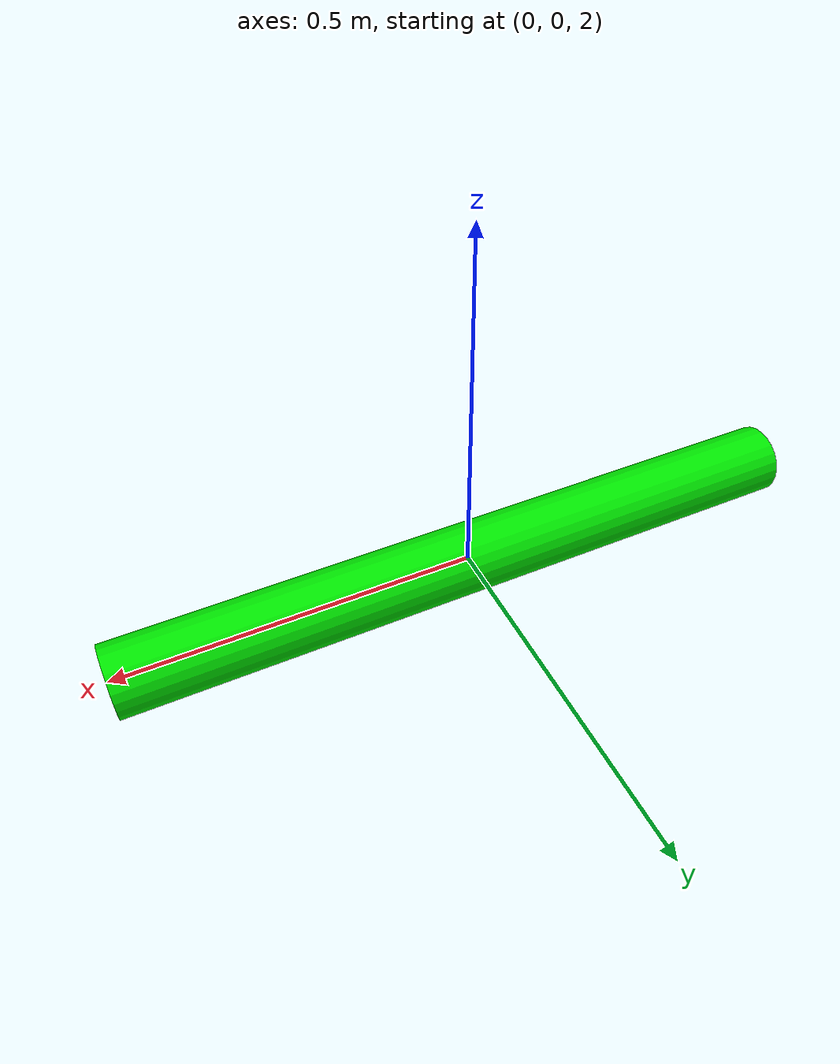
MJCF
<mujoco>
	<option gravity="0 0 -9.81">
		<flag sensornoise="enable" />
	</option>
	<worldbody>
        <light diffuse=".5 .5 .5" pos="0 0 3" dir="0 0 -1"/>
		<geom type="plane" size="100 100 0.1" rgba=".9 0 0 1"/>
		<body pos="0 0 2" euler="0 270 0">
			<joint name="pin" type="hinge" axis = "0 -1 0" pos="0 0 0.5"/>
			<geom type="cylinder" size="0.05 0.5" rgba="0 .9 0 1" mass="1"/>
		</body>
	</worldbody>
	<actuator>
		<motor joint="pin" name="servo" gear="0.1" ctrllimited="true" ctrlrange="-1 1" />
		<position name="position_servo" joint="pin" kp="10" />
		<velocity name="velocity_servo" joint="pin" kv="0" />
	</actuator>
	<sensor>
		<jointpos joint="pin" noise="0.2"/>
		<jointvel joint="pin" noise="1" />
	</sensor>
</mujoco>
